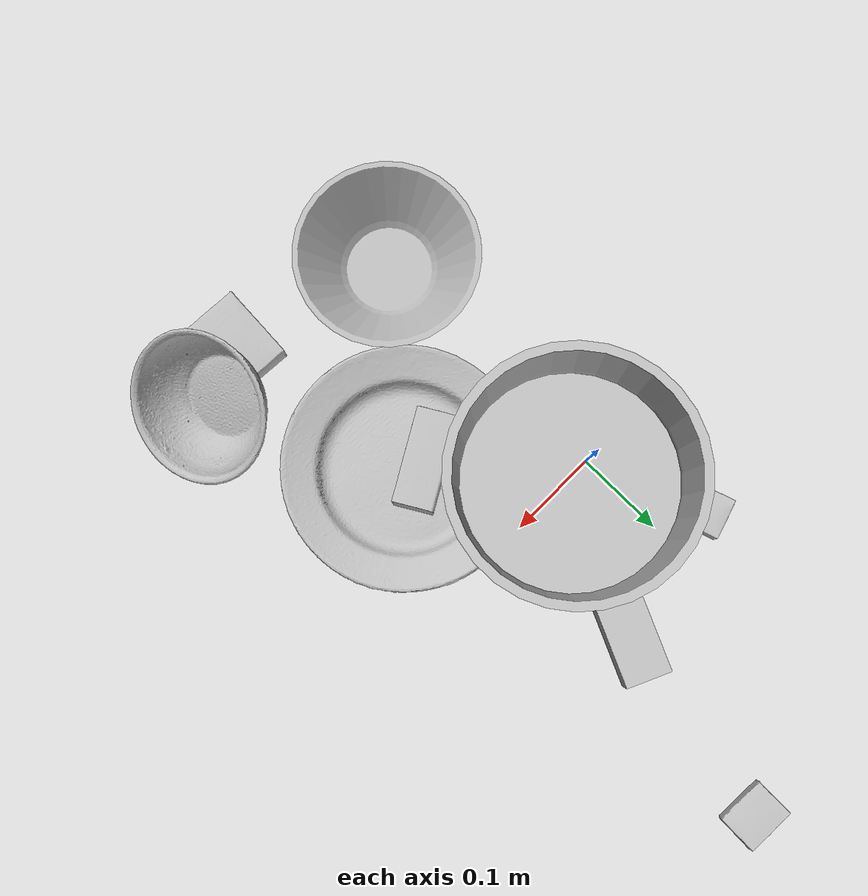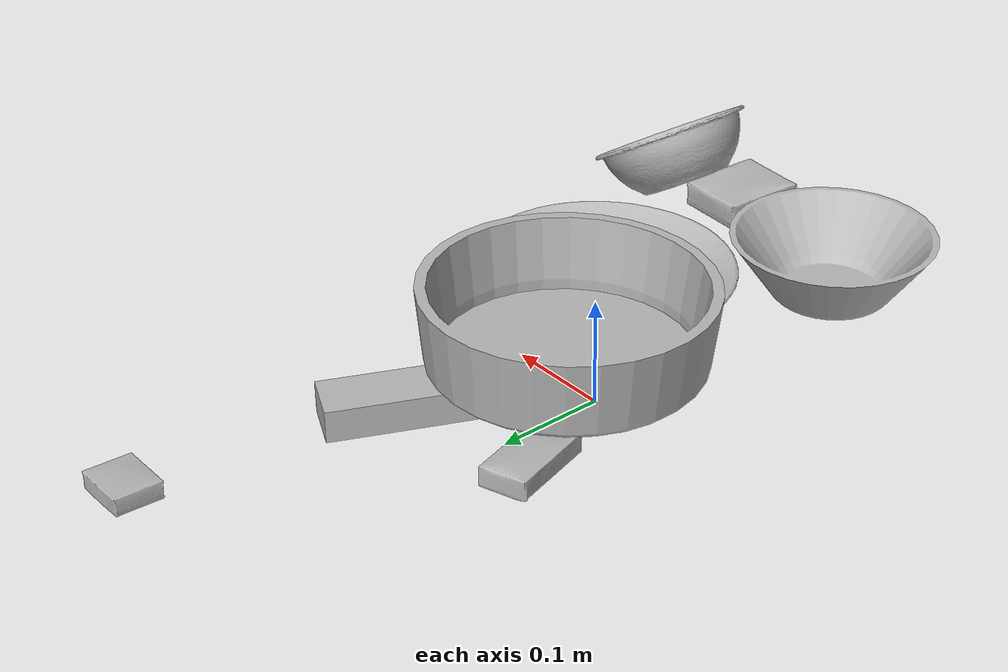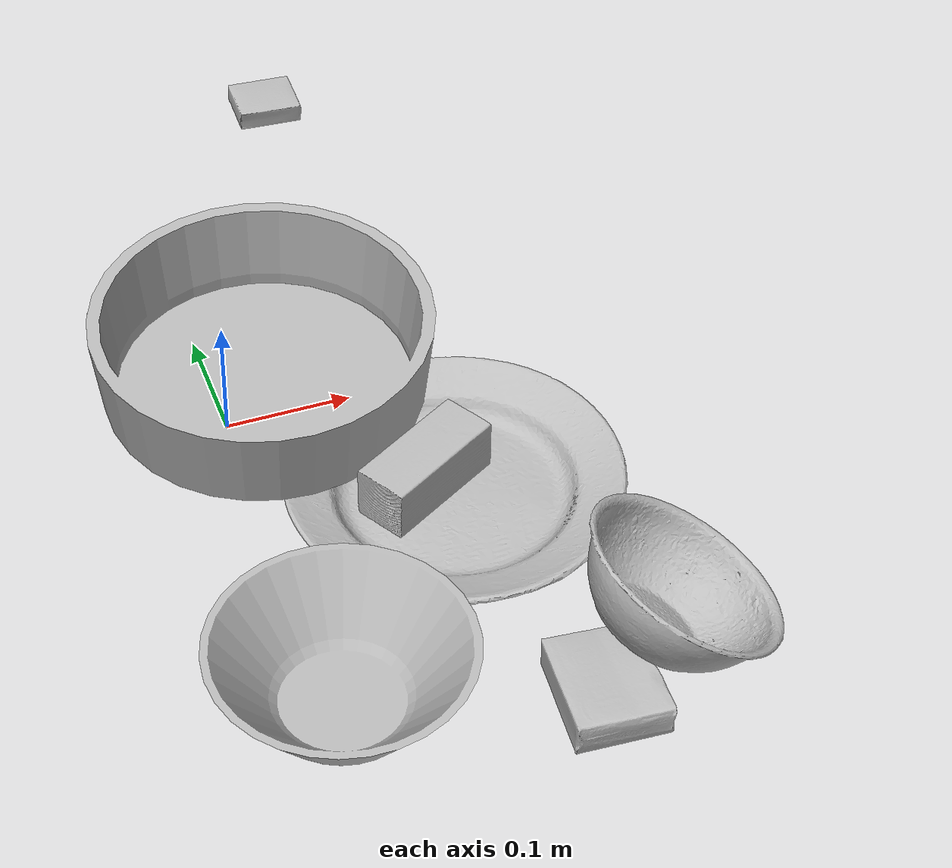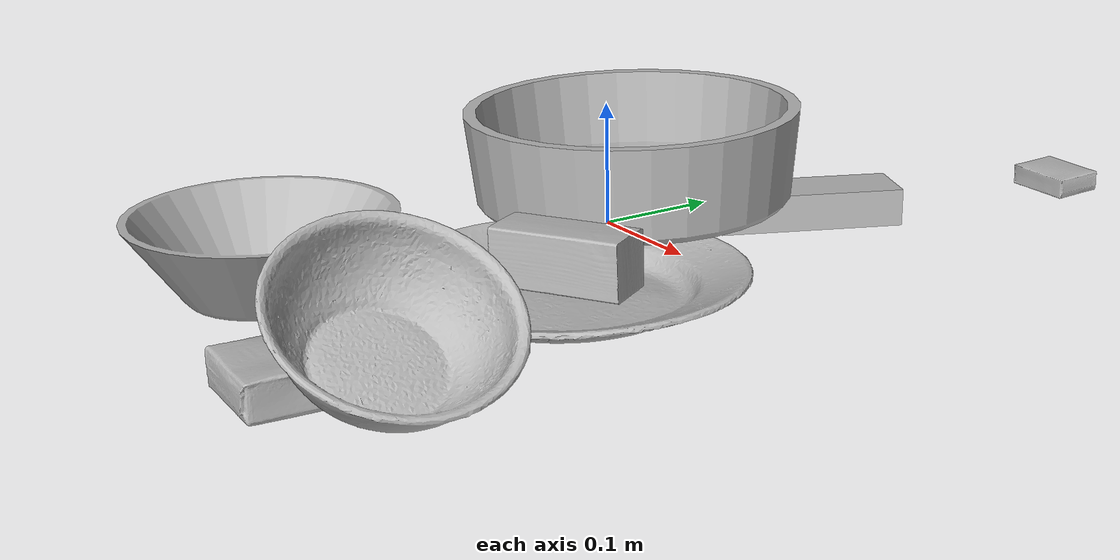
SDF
<sdf version="1.4">
  <world name="default">
    <light name="light1" type="point">
      <pose>0 0 1 0 0 0</pose>
      <diffuse>3 3 3 1</diffuse>
      <specular>3 3 3 1</specular>
    </light>
    <light name="light2" type="point">
      <pose>0 0.5 2 0 0 0</pose>
      <diffuse>1 1 1 1</diffuse>
      <specular>1 1 1 1</specular>
    </light>
    <light name="light3" type="point">
      <pose>0 0.5 2 0 0 0</pose>
      <diffuse>3 3 3 1</diffuse>
      <specular>3 3 3 1</specular>
    </light>
    <scene>
      <ambient>0.7 0.7 0.7</ambient>
    </scene>
    <model name="box1">
      <link name="link_box1">
        <collision name="default">
          <geometry>
            <mesh>
              <uri>model://jenga/collision_meshes/collision.obj</uri>
              <scale>1.0 1.0 1.0</scale>
            </mesh>
          </geometry>
          <surface>
            <friction>
              <ode>
                <mu>0.5</mu>
                <mu2>0.5</mu2>
              </ode>
            </friction>
          <contact>
        <ode>
            <max_vel>0</max_vel>
            <min_depth>0.0001</min_depth>
            <kp>1e8</kp>
        </ode>
    </contact></surface>
        </collision>
        <visual name="default">
          <geometry>
            <mesh>
              <uri>model://jenga/visual_meshes/visual.dae</uri>
              <scale>1.0 1.0 1.0</scale>
            </mesh>
          </geometry>
        </visual>
        <inertial>
          <mass>0.24226053059101105</mass>
          <pose>-2.502855807051674e-07 -0.0001025000965455547 -4.092339804628864e-05 0.0 -7.34215461761844e-07 0.0</pose>
          <inertia>
            <ixx>6.703936e-05</ixx>
            <iyy>0.0004542569</iyy>
            <izz>0.00048495785</izz>
            <ixy>0</ixy>
            <ixz>0</ixz>
            <iyz>0</iyz>
          </inertia>
        </inertial>
      </link>
      <pose>0.09006113559007645 0.13390858471393585 0.015001179650425911 -1.0355435342508587e-05 -3.355543632701005e-07 -2.0003993412583436</pose>
    </model>
    <model name="box11">
      <link name="link_box11">
        <collision name="default">
          <geometry>
            <mesh>
              <uri>model://sugar_box/collision_meshes/collision.obj</uri>
              <scale>0.5 0.5 0.5</scale>
            </mesh>
          </geometry>
          <surface>
            <friction>
              <ode>
                <mu>0.5</mu>
                <mu2>0.5</mu2>
              </ode>
            </friction>
          <contact>
        <ode>
            <max_vel>0</max_vel>
            <min_depth>0.0001</min_depth>
            <kp>1e8</kp>
        </ode>
    </contact></surface>
        </collision>
        <visual name="default">
          <geometry>
            <mesh>
              <uri>model://sugar_box/visual_meshes/visual.dae</uri>
              <scale>0.5 0.5 0.5</scale>
            </mesh>
          </geometry>
        </visual>
        <inertial>
          <mass>0.06204606965184212</mass>
          <pose>0.0005171863595023751 1.9245549992774613e-05 -0.00018182402709499002 -0.0004046263588767038 0.0010506634057764815 0.0026153785560837986</pose>
          <inertia>
            <ixx>1.2924152e-05</ixx>
            <iyy>4.1773517e-05</iyy>
            <izz>5.0007893e-05</izz>
            <ixy>0</ixy>
            <ixz>0</ixz>
            <iyz>0</iyz>
          </inertia>
        </inertial>
      </link>
      <pose>-0.04219789430499077 0.10587771981954575 0.01139930821955204 0.0007746311245222586 -0.02343299160726327 1.8771660166442148</pose>
    </model>
    <model name="box2">
      <link name="link_box2">
        <collision name="default">
          <geometry>
            <mesh>
              <uri>model://gelatin_box/collision_meshes/collision.obj</uri>
              <scale>1.0 1.0 1.0</scale>
            </mesh>
          </geometry>
          <surface>
            <friction>
              <ode>
                <mu>0.5</mu>
                <mu2>0.5</mu2>
              </ode>
            </friction>
          <contact>
        <ode>
            <max_vel>0</max_vel>
            <min_depth>0.0001</min_depth>
            <kp>1e8</kp>
        </ode>
    </contact></surface>
        </collision>
        <visual name="default">
          <geometry>
            <mesh>
              <uri>model://gelatin_box/visual_meshes/visual.dae</uri>
              <scale>1.0 1.0 1.0</scale>
            </mesh>
          </geometry>
        </visual>
        <inertial>
          <mass>0.13706544041633606</mass>
          <pose>0.000431961816502735 0.00011156871187267825 -0.0003640321083366871 -0.0010503719975702072 -0.0047558196187974565 0.01644056506069309</pose>
          <inertia>
            <ixx>9.675702e-05</ixx>
            <iyy>6.911303e-05</iyy>
            <izz>0.00014728573</izz>
            <ixy>0</ixy>
            <ixz>0</ixz>
            <iyz>0</iyz>
          </inertia>
        </inertial>
      </link>
      <pose>0.17538978159427643 -0.3527739346027374 0.015246007591485977 -0.0003565179568203907 0.0006654373016406449 -0.08095745219898551</pose>
    </model>
    <model name="box21">
      <link name="link_box21">
        <collision name="default">
          <geometry>
            <mesh>
              <uri>model://pudding_box/collision_meshes/collision.obj</uri>
              <scale>0.5 0.5 0.5</scale>
            </mesh>
          </geometry>
          <surface>
            <friction>
              <ode>
                <mu>0.5</mu>
                <mu2>0.5</mu2>
              </ode>
            </friction>
          <contact>
        <ode>
            <max_vel>0</max_vel>
            <min_depth>0.0001</min_depth>
            <kp>1e8</kp>
        </ode>
    </contact></surface>
        </collision>
        <visual name="default">
          <geometry>
            <mesh>
              <uri>model://pudding_box/visual_meshes/visual.dae</uri>
              <scale>0.5 0.5 0.5</scale>
            </mesh>
          </geometry>
        </visual>
        <inertial>
          <mass>0.041178666055202484</mass>
          <pose>0.00024474109522998333 0.00040339428232982755 -0.00025944141088984907 0.005213101335872514 -0.006603799630434185 0.020079819569992066</pose>
          <inertia>
            <ixx>1.163759e-05</ixx>
            <iyy>7.8298535e-06</iyy>
            <izz>1.7185945e-05</izz>
            <ixy>0</ixy>
            <ixz>0</ixz>
            <iyz>0</iyz>
          </inertia>
        </inertial>
      </link>
      <pose>0.14377328753471375 0.3767802119255066 0.009862902574241161 0.022348503859025835 -0.011391682951532495 1.5459659902248437</pose>
    </model>
    <model name="box3">
      <link name="link_box3">
        <collision name="default">
          <geometry>
            <mesh>
              <uri>model://cracker_box/collision_meshes/collision.obj</uri>
              <scale>0.25 0.25 0.25</scale>
            </mesh>
          </geometry>
          <surface>
            <friction>
              <ode>
                <mu>0.5</mu>
                <mu2>0.5</mu2>
              </ode>
            </friction>
          <contact>
        <ode>
            <max_vel>0</max_vel>
            <min_depth>0.0001</min_depth>
            <kp>1e8</kp>
        </ode>
    </contact></surface>
        </collision>
        <visual name="default">
          <geometry>
            <mesh>
              <uri>model://cracker_box/visual_meshes/visual.dae</uri>
              <scale>0.25 0.25 0.25</scale>
            </mesh>
          </geometry>
        </visual>
        <inertial>
          <mass>0.02017100155353546</mass>
          <pose>0.00023660367878619581 6.358561222441494e-05 -0.00042573839891701937 -0.0003162077973682912 -0.011106487737506417 0.0025467945369474112</pose>
          <inertia>
            <ixx>3.2066264e-06</ixx>
            <iyy>5.2947703e-06</iyy>
            <izz>7.556123e-06</izz>
            <ixy>0</ixy>
            <ixz>0</ixz>
            <iyz>0</iyz>
          </inertia>
        </inertial>
      </link>
      <pose>0.058058954775333405 0.031732916831970215 0.009120452217757702 -0.011788207073464825 -0.007367113407691534 -2.963147555892231</pose>
    </model>
    <model name="box31">
      <link name="link_box31">
        <collision name="default">
          <geometry>
            <mesh>
              <uri>model://wood_block/collision_meshes/collision.obj</uri>
              <scale>0.5 0.5 0.5</scale>
            </mesh>
          </geometry>
          <surface>
            <friction>
              <ode>
                <mu>0.5</mu>
                <mu2>0.5</mu2>
              </ode>
            </friction>
          <contact>
        <ode>
            <max_vel>0</max_vel>
            <min_depth>0.0001</min_depth>
            <kp>1e8</kp>
        </ode>
    </contact></surface>
        </collision>
        <visual name="default">
          <geometry>
            <mesh>
              <uri>model://wood_block/visual_meshes/visual.dae</uri>
              <scale>0.5 0.5 0.5</scale>
            </mesh>
          </geometry>
        </visual>
        <inertial>
          <mass>0.1962708830833435</mass>
          <pose>-2.9066577553749084e-06 -0.000285404734313488 0.00013204291462898254 -0.05220969561834339 -0.0051926963065425085 -0.006861379449261536</pose>
          <inertia>
            <ixx>6.566003e-05</ixx>
            <iyy>0.00020742005</iyy>
            <izz>0.00020664421</izz>
            <ixy>0</ixy>
            <ixz>0</ixz>
            <iyz>0</iyz>
          </inertia>
        </inertial>
      </link>
      <pose>0.12144956737756729 -0.11935192346572876 0.027587467804551125 -0.00019649922826848985 0.01669020595542368 -2.62200690129704</pose>
    </model>
    <model name="plate1">
      <link name="link_plate1">
        <collision name="default">
          <geometry>
            <mesh>
              <uri>model://plate/collision_meshes/collision.obj</uri>
              <scale>1.0 1.0 1.0</scale>
            </mesh>
          </geometry>
          <surface>
            <friction>
              <ode>
                <mu>0.5</mu>
                <mu2>0.5</mu2>
              </ode>
            </friction>
          <contact>
        <ode>
            <max_vel>0</max_vel>
            <min_depth>0.0001</min_depth>
            <kp>1e8</kp>
        </ode>
    </contact></surface>
        </collision>
        <visual name="default">
          <geometry>
            <mesh>
              <uri>model://plate/visual_meshes/visual.dae</uri>
              <scale>1.0 1.0 1.0</scale>
            </mesh>
          </geometry>
        </visual>
        <inertial>
          <mass>0.17345036566257477</mass>
          <pose>-0.0006044625188224018 0.00027825802681036294 -0.0010561991948634386 0.0022187574415082918 -0.0032254973035065115 0.4526175972404713</pose>
          <inertia>
            <ixx>0.00081140426</ixx>
            <iyy>0.0008036436</iyy>
            <izz>0.0015869853</izz>
            <ixy>0</ixy>
            <ixz>0</ixz>
            <iyz>0</iyz>
          </inertia>
        </inertial>
      </link>
      <pose>0.14146189391613007 -0.13029028475284576 0.01451435498893261 0.0032168703209835645 0.014076235772032153 -2.6952028653327322</pose>
    </model>
    <model name="bowl1">
      <link name="link_bowl1">
        <collision name="default">
          <geometry>
            <mesh>
              <uri>model://bowl/collision_meshes/collision.obj</uri>
              <scale>1.0 1.0 1.0</scale>
            </mesh>
          </geometry>
          <surface>
            <friction>
              <ode>
                <mu>0.5</mu>
                <mu2>0.5</mu2>
              </ode>
            </friction>
          <contact>
        <ode>
            <max_vel>0</max_vel>
            <min_depth>0.0001</min_depth>
            <kp>1e8</kp>
        </ode>
    </contact></surface>
        </collision>
        <visual name="default">
          <geometry>
            <mesh>
              <uri>model://bowl/visual_meshes/visual.dae</uri>
              <scale>1.0 1.0 1.0</scale>
            </mesh>
          </geometry>
        </visual>
        <inertial>
          <mass>0.11633910983800888</mass>
          <pose>0.00020445004338398576 -0.0010302083101123571 -0.0008042659610509872 -0.01576420252076368 0.01454664289610389 0.7140315541596068</pose>
          <inertia>
            <ixx>0.0002672402</ixx>
            <iyy>0.000261269</iyy>
            <izz>0.00044958986</izz>
            <ixy>0</ixy>
            <ixz>0</ixz>
            <iyz>0</iyz>
          </inertia>
        </inertial>
      </link>
      <pose>0.23472779989242554 -0.3172855079174042 0.0469331331551075 0.5520704943775465 -0.10017246277444283 1.7209658303085573</pose>
    </model>
    <model name="plate2">
      <link name="link_plate2">
        <collision name="default">
          <geometry>
            <mesh>
              <uri>model://pan_tefal/collision_meshes/collision.obj</uri>
              <scale>1.0 1.0 1.0</scale>
            </mesh>
          </geometry>
          <surface>
            <friction>
              <ode>
                <mu>0.5</mu>
                <mu2>0.5</mu2>
              </ode>
            </friction>
          <contact>
        <ode>
            <max_vel>0</max_vel>
            <min_depth>0.0001</min_depth>
            <kp>1e8</kp>
        </ode>
    </contact></surface>
        </collision>
        <visual name="default">
          <geometry>
            <mesh>
              <uri>model://pan_tefal/visual_meshes/visual.dae</uri>
              <scale>1.0 1.0 1.0</scale>
            </mesh>
          </geometry>
        </visual>
        <inertial>
          <mass>0.6251956820487976</mass>
          <pose>-0.00018002417345996946 3.279016891610809e-05 -0.00851493515074253 0.0008190253681579672 -0.00033013925853852665 -0.331857454583129</pose>
          <inertia>
            <ixx>0.004315697</ixx>
            <iyy>0.00434352</iyy>
            <izz>0.007944365</izz>
            <ixy>0</ixy>
            <ixz>0</ixz>
            <iyz>0</iyz>
          </inertia>
        </inertial>
      </link>
      <pose>0.03247976303100586 0.0024626487866044044 0.06639738380908966 0.0067423555559851436 -0.02328270999515094 0.9556397631566731</pose>
    </model>
    <model name="bowl2">
      <link name="link_bowl2">
        <collision name="default">
          <geometry>
            <mesh>
              <uri>model://bowl_a/collision_meshes/collision.obj</uri>
              <scale>1.0 1.0 1.0</scale>
            </mesh>
          </geometry>
          <surface>
            <friction>
              <ode>
                <mu>0.5</mu>
                <mu2>0.5</mu2>
              </ode>
            </friction>
          <contact>
        <ode>
            <max_vel>0</max_vel>
            <min_depth>0.0001</min_depth>
            <kp>1e8</kp>
        </ode>
    </contact></surface>
        </collision>
        <visual name="default">
          <geometry>
            <mesh>
              <uri>model://bowl_a/visual_meshes/visual.dae</uri>
              <scale>1.0 1.0 1.0</scale>
            </mesh>
          </geometry>
        </visual>
        <inertial>
          <mass>0.3434441387653351</mass>
          <pose>0.0002786742115858942 4.731103399535641e-05 -0.0013765294570475817 -0.000980532155977885 -0.0010938290454026757 -0.191241060811112</pose>
          <inertia>
            <ixx>0.0009778013</ixx>
            <iyy>0.0009838042</iyy>
            <izz>0.0017390571</izz>
            <ixy>0</ixy>
            <ixz>0</ixz>
            <iyz>0</iyz>
          </inertia>
        </inertial>
      </link>
      <pose>-0.0011761665809899569 -0.2954583168029785 0.030383002012968063 -6.424459055046312e-09 -2.983349187245402e-08 -0.642236449715165</pose>
    </model>
  <physics type="ode">
      <max_contacts>50</max_contacts>
      <ode>
        <solver>
          <type>quick</type>
          <iters>75</iters>
        </solver>
        <constraints>
          <contact_max_correcting_vel>0</contact_max_correcting_vel>
          <contact_surface_layer>0</contact_surface_layer>
        </constraints>
      </ode>
    </physics></world>
</sdf>
